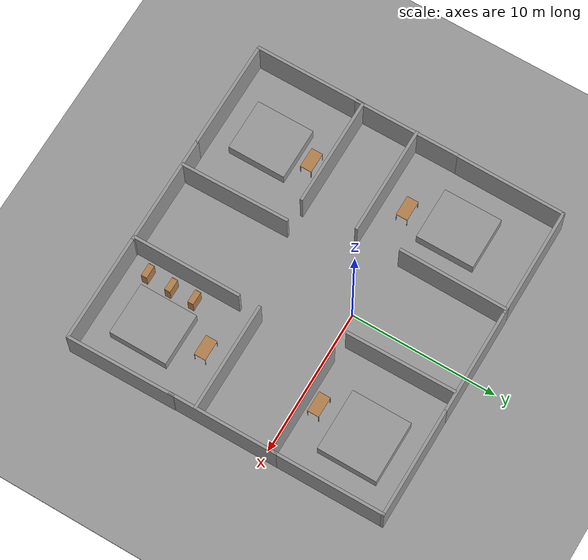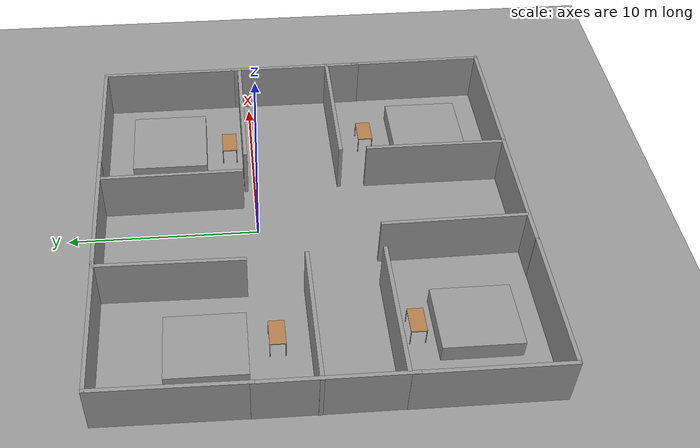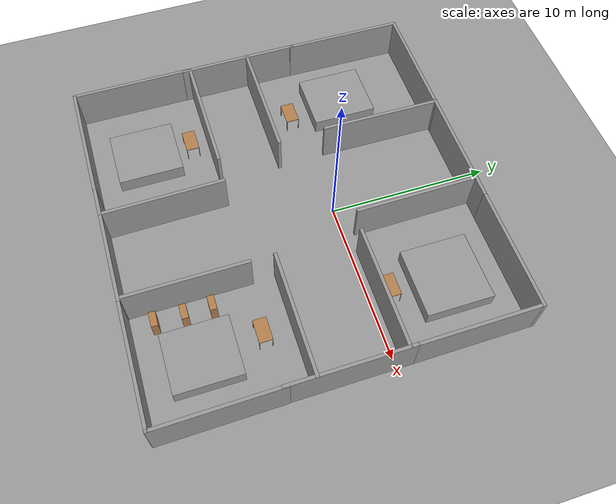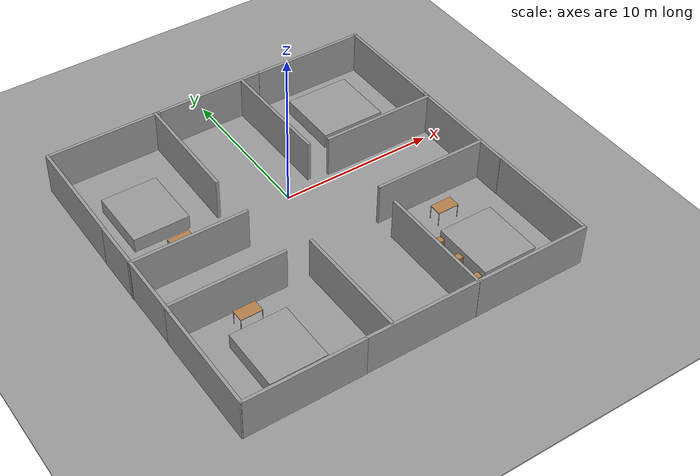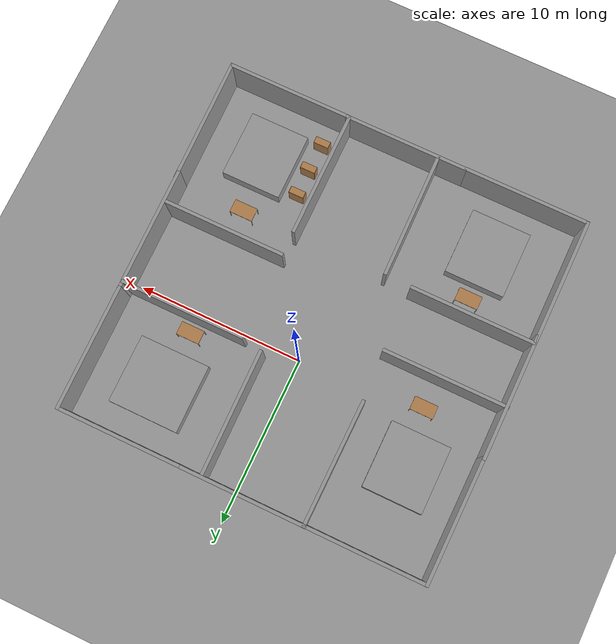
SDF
<sdf version="1.6">
 <world name="default">
  <light name="sun" type="directional">
   <pose>0 0 10 0 -0 0</pose>
   <diffuse>0.8 0.8 0.8 1</diffuse>
   <specular>0.1 0.1 0.1 1</specular>
   <attenuation>
    <range>1000</range>
    <constant>0.9</constant>
    <linear>0.01</linear>
    <quadratic>0.001</quadratic>
   </attenuation>
   <direction>-0.5 0.5 -1</direction>
  </light>
  <model name="ground_plane">
   <static>1</static>
   <link name="link">
    <collision name="collision">
     <geometry><plane><normal>0 0 1</normal><size>100 100</size></plane></geometry>
     <surface><friction><ode><mu>100</mu><mu2>50</mu2></ode></friction></surface>
    </collision>
    <visual name="visual">
     <cast_shadows>0</cast_shadows>
     <geometry><plane><normal>0 0 1</normal><size>100 100</size></plane></geometry>
     <material>
      <script><uri>file://media/materials/scripts/gazebo.material</uri><name>Gazebo/Grey</name></script>
     </material>
    </visual>
   </link>
  </model>
  <gravity>0 0 -9.8</gravity>
  <magnetic_field>6e-06 2.3e-05 -4.2e-05</magnetic_field>
  <atmosphere type="adiabatic"/>
  <physics name="default_physics" default="0" type="ode">
   <max_step_size>0.001</max_step_size>
   <real_time_factor>1</real_time_factor>
   <real_time_update_rate>1000</real_time_update_rate>
  </physics>
  <scene><ambient>0.4 0.4 0.4 1</ambient><background>0.7 0.7 0.7 1</background><shadows>1</shadows></scene>
  <spherical_coordinates>
   <surface_model>EARTH_WGS84</surface_model>
   <latitude_deg>0</latitude_deg>
   <longitude_deg>0</longitude_deg>
   <elevation>0</elevation>
   <heading_deg>0</heading_deg>
  </spherical_coordinates>
  <model name="grey_wall">
   <static>1</static>
   <link name="link">
    <pose>0 0 1.4 0 -0 0</pose>
    <collision name="collision"><geometry><box><size>7.5 0.2 2.8</size></box></geometry></collision>
    <visual name="visual">
     <cast_shadows>0</cast_shadows>
     <geometry><box><size>7.5 0.2 2.8</size></box></geometry>
     <material>
      <script>
       <uri>model://grey_wall/materials/scripts</uri>
       <uri>model://grey_wall/materials/textures</uri>
       <name>vrc/grey_wall</name>
      </script>
     </material>
    </visual>
   </link>
   <pose>-0.623864 8.19671 0 0 -0 0</pose>
  </model>
  <model name="grey_wall_0">
   <static>1</static>
   <link name="link">
    <pose>0 0 1.4 0 -0 0</pose>
    <collision name="collision"><geometry><box><size>7.5 0.2 2.8</size></box></geometry></collision>
    <visual name="visual">
     <cast_shadows>0</cast_shadows>
     <geometry><box><size>7.5 0.2 2.8</size></box></geometry>
     <material>
      <script>
       <uri>model://grey_wall/materials/scripts</uri>
       <uri>model://grey_wall/materials/textures</uri>
       <name>vrc/grey_wall</name>
      </script>
     </material>
    </visual>
   </link>
   <pose>6.825 8.19069 0 0 -0 0</pose>
  </model>
  <model name="grey_wall_1">
   <static>1</static>
   <link name="link">
    <pose>0 0 1.4 0 -0 0</pose>
    <collision name="collision"><geometry><box><size>7.5 0.2 2.8</size></box></geometry></collision>
    <visual name="visual">
     <cast_shadows>0</cast_shadows>
     <geometry><box><size>7.5 0.2 2.8</size></box></geometry>
     <material>
      <script>
       <uri>model://grey_wall/materials/scripts</uri>
       <uri>model://grey_wall/materials/textures</uri>
       <name>vrc/grey_wall</name>
      </script>
     </material>
    </visual>
   </link>
   <pose>-7.68821 8.18383 0 0 -0 0</pose>
  </model>
  <model name="grey_wall_clone">
   <static>1</static>
   <link name="link">
    <pose>0 0 1.4 0 -0 0</pose>
    <collision name="collision"><geometry><box><size>7.5 0.2 2.8</size></box></geometry></collision>
    <visual name="visual">
     <cast_shadows>0</cast_shadows>
     <geometry><box><size>7.5 0.2 2.8</size></box></geometry>
     <material>
      <script>
       <uri>model://grey_wall/materials/scripts</uri>
       <uri>model://grey_wall/materials/textures</uri>
       <name>vrc/grey_wall</name>
      </script>
     </material>
    </visual>
   </link>
   <pose>10.4889 4.5361 0 0 0 -1.56584</pose>
  </model>
  <model name="grey_wall_2">
   <static>1</static>
   <link name="link">
    <pose>0 0 1.4 0 -0 0</pose>
    <collision name="collision"><geometry><box><size>7.5 0.2 2.8</size></box></geometry></collision>
    <visual name="visual">
     <cast_shadows>0</cast_shadows>
     <geometry><box><size>7.5 0.2 2.8</size></box></geometry>
     <material>
      <script>
       <uri>model://grey_wall/materials/scripts</uri>
       <uri>model://grey_wall/materials/textures</uri>
       <name>vrc/grey_wall</name>
      </script>
     </material>
    </visual>
   </link>
   <pose>10.5283 -2.77677 0 0 0 -1.56603</pose>
  </model>
  <model name="ground_plane_0">
   <static>1</static>
   <link name="link">
    <collision name="collision">
     <geometry><plane><normal>0 0 1</normal><size>100 100</size></plane></geometry>
     <surface><friction><ode><mu>100</mu><mu2>50</mu2></ode></friction></surface>
    </collision>
    <visual name="visual">
     <cast_shadows>0</cast_shadows>
     <geometry><plane><normal>0 0 1</normal><size>100 100</size></plane></geometry>
     <material>
      <script><uri>file://media/materials/scripts/gazebo.material</uri><name>Gazebo/Grey</name></script>
     </material>
    </visual>
   </link>
   <pose>12.7265 -1.62779 0 0 -0 0</pose>
  </model>
  <model name="grey_wall_3">
   <static>1</static>
   <link name="link">
    <pose>0 0 1.4 0 -0 0</pose>
    <collision name="collision"><geometry><box><size>7.5 0.2 2.8</size></box></geometry></collision>
    <visual name="visual">
     <cast_shadows>0</cast_shadows>
     <geometry><box><size>7.5 0.2 2.8</size></box></geometry>
     <material>
      <script>
       <uri>model://grey_wall/materials/scripts</uri>
       <uri>model://grey_wall/materials/textures</uri>
       <name>vrc/grey_wall</name>
      </script>
     </material>
    </visual>
   </link>
   <pose>10.6074 -9.84817 0 0 0 -1.55935</pose>
  </model>
  <model name="grey_wall_4">
   <static>1</static>
   <link name="link">
    <pose>0 0 1.4 0 -0 0</pose>
    <collision name="collision"><geometry><box><size>7.5 0.2 2.8</size></box></geometry></collision>
    <visual name="visual">
     <cast_shadows>0</cast_shadows>
     <geometry><box><size>7.5 0.2 2.8</size></box></geometry>
     <material>
      <script>
       <uri>model://grey_wall/materials/scripts</uri>
       <uri>model://grey_wall/materials/textures</uri>
       <name>vrc/grey_wall</name>
      </script>
     </material>
    </visual>
   </link>
   <pose>6.99134 -13.5122 0 0 -0 0</pose>
  </model>
  <model name="grey_wall_5">
   <static>1</static>
   <link name="link">
    <pose>0 0 1.4 0 -0 0</pose>
    <collision name="collision"><geometry><box><size>7.5 0.2 2.8</size></box></geometry></collision>
    <visual name="visual">
     <cast_shadows>0</cast_shadows>
     <geometry><box><size>7.5 0.2 2.8</size></box></geometry>
     <material>
      <script>
       <uri>model://grey_wall/materials/scripts</uri>
       <uri>model://grey_wall/materials/textures</uri>
       <name>vrc/grey_wall</name>
      </script>
     </material>
    </visual>
   </link>
   <pose>-11.3942 4.53108 0 0 0 -1.57926</pose>
  </model>
  <model name="grey_wall_6">
   <static>1</static>
   <link name="link">
    <pose>0 0 1.4 0 -0 0</pose>
    <collision name="collision"><geometry><box><size>7.5 0.2 2.8</size></box></geometry></collision>
    <visual name="visual">
     <cast_shadows>0</cast_shadows>
     <geometry><box><size>7.5 0.2 2.8</size></box></geometry>
     <material>
      <script>
       <uri>model://grey_wall/materials/scripts</uri>
       <uri>model://grey_wall/materials/textures</uri>
       <name>vrc/grey_wall</name>
      </script>
     </material>
    </visual>
   </link>
   <pose>-11.4381 -2.75549 0 0 0 -1.57057</pose>
  </model>
  <model name="grey_wall_7">
   <static>1</static>
   <link name="link">
    <pose>0 0 1.4 0 -0 0</pose>
    <collision name="collision"><geometry><box><size>7.5 0.2 2.8</size></box></geometry></collision>
    <visual name="visual">
     <cast_shadows>0</cast_shadows>
     <geometry><box><size>7.5 0.2 2.8</size></box></geometry>
     <material>
      <script>
       <uri>model://grey_wall/materials/scripts</uri>
       <uri>model://grey_wall/materials/textures</uri>
       <name>vrc/grey_wall</name>
      </script>
     </material>
    </visual>
   </link>
   <pose>-0.33643 -13.5007 0 0 -0 0</pose>
  </model>
  <model name="grey_wall_8">
   <static>1</static>
   <link name="link">
    <pose>0 0 1.4 0 -0 0</pose>
    <collision name="collision"><geometry><box><size>7.5 0.2 2.8</size></box></geometry></collision>
    <visual name="visual">
     <cast_shadows>0</cast_shadows>
     <geometry><box><size>7.5 0.2 2.8</size></box></geometry>
     <material>
      <script>
       <uri>model://grey_wall/materials/scripts</uri>
       <uri>model://grey_wall/materials/textures</uri>
       <name>vrc/grey_wall</name>
      </script>
     </material>
    </visual>
   </link>
   <pose>-11.4536 -9.84025 0 0 0 -1.57113</pose>
  </model>
  <model name="grey_wall_9">
   <static>1</static>
   <link name="link">
    <pose>0 0 1.4 0 -0 0</pose>
    <collision name="collision"><geometry><box><size>7.5 0.2 2.8</size></box></geometry></collision>
    <visual name="visual">
     <cast_shadows>0</cast_shadows>
     <geometry><box><size>7.5 0.2 2.8</size></box></geometry>
     <material>
      <script>
       <uri>model://grey_wall/materials/scripts</uri>
       <uri>model://grey_wall/materials/textures</uri>
       <name>vrc/grey_wall</name>
      </script>
     </material>
    </visual>
   </link>
   <pose>-7.72627 -13.5148 0 0 -0 0</pose>
  </model>
  <model name="grey_wall_10">
   <static>1</static>
   <link name="link">
    <pose>0 0 1.4 0 -0 0</pose>
    <collision name="collision"><geometry><box><size>7.5 0.2 2.8</size></box></geometry></collision>
    <visual name="visual">
     <cast_shadows>0</cast_shadows>
     <geometry><box><size>7.5 0.2 2.8</size></box></geometry>
     <material>
      <script>
       <uri>model://grey_wall/materials/scripts</uri>
       <uri>model://grey_wall/materials/textures</uri>
       <name>vrc/grey_wall</name>
      </script>
     </material>
    </visual>
   </link>
   <pose>-7.74765 -6.0001 0 0 -0 0</pose>
  </model>
  <model name="grey_wall_11">
   <static>1</static>
   <link name="link">
    <pose>0 0 1.4 0 -0 0</pose>
    <collision name="collision"><geometry><box><size>7.5 0.2 2.8</size></box></geometry></collision>
    <visual name="visual">
     <cast_shadows>0</cast_shadows>
     <geometry><box><size>7.5 0.2 2.8</size></box></geometry>
     <material>
      <script>
       <uri>model://grey_wall/materials/scripts</uri>
       <uri>model://grey_wall/materials/textures</uri>
       <name>vrc/grey_wall</name>
      </script>
     </material>
    </visual>
   </link>
   <pose>-2.38469 -9.76806 0 0 0 -1.55688</pose>
  </model>
  <model name="grey_wall_12">
   <static>1</static>
   <link name="link">
    <pose>0 0 1.4 0 -0 0</pose>
    <collision name="collision"><geometry><box><size>7.5 0.2 2.8</size></box></geometry></collision>
    <visual name="visual">
     <cast_shadows>0</cast_shadows>
     <geometry><box><size>7.5 0.2 2.8</size></box></geometry>
     <material>
      <script>
       <uri>model://grey_wall/materials/scripts</uri>
       <uri>model://grey_wall/materials/textures</uri>
       <name>vrc/grey_wall</name>
      </script>
     </material>
    </visual>
   </link>
   <pose>6.85663 0.482576 0 0 -0 0</pose>
  </model>
  <model name="grey_wall_13">
   <static>1</static>
   <link name="link">
    <pose>0 0 1.4 0 -0 0</pose>
    <collision name="collision"><geometry><box><size>7.5 0.2 2.8</size></box></geometry></collision>
    <visual name="visual">
     <cast_shadows>0</cast_shadows>
     <geometry><box><size>7.5 0.2 2.8</size></box></geometry>
     <material>
      <script>
       <uri>model://grey_wall/materials/scripts</uri>
       <uri>model://grey_wall/materials/textures</uri>
       <name>vrc/grey_wall</name>
      </script>
     </material>
    </visual>
   </link>
   <pose>1.87856 4.42047 0 0 0 -1.56167</pose>
  </model>
  <model name="grey_wall_14">
   <static>1</static>
   <link name="link">
    <pose>0 0 1.4 0 -0 0</pose>
    <collision name="collision"><geometry><box><size>7.5 0.2 2.8</size></box></geometry></collision>
    <visual name="visual">
     <cast_shadows>0</cast_shadows>
     <geometry><box><size>7.5 0.2 2.8</size></box></geometry>
     <material>
      <script>
       <uri>model://grey_wall/materials/scripts</uri>
       <uri>model://grey_wall/materials/textures</uri>
       <name>vrc/grey_wall</name>
      </script>
     </material>
    </visual>
   </link>
   <pose>6.88623 -4.63329 0 0 -0 0</pose>
  </model>
  <model name="grey_wall_15">
   <static>1</static>
   <link name="link">
    <pose>0 0 1.4 0 -0 0</pose>
    <collision name="collision"><geometry><box><size>7.5 0.2 2.8</size></box></geometry></collision>
    <visual name="visual">
     <cast_shadows>0</cast_shadows>
     <geometry><box><size>7.5 0.2 2.8</size></box></geometry>
     <material>
      <script>
       <uri>model://grey_wall/materials/scripts</uri>
       <uri>model://grey_wall/materials/textures</uri>
       <name>vrc/grey_wall</name>
      </script>
     </material>
    </visual>
   </link>
   <pose>3.20432 -9.78246 0 0 0 -1.56937</pose>
  </model>
  <model name="grey_wall_16">
   <static>1</static>
   <link name="link">
    <pose>0 0 1.4 0 -0 0</pose>
    <collision name="collision"><geometry><box><size>7.5 0.2 2.8</size></box></geometry></collision>
    <visual name="visual">
     <cast_shadows>0</cast_shadows>
     <geometry><box><size>7.5 0.2 2.8</size></box></geometry>
     <material>
      <script>
       <uri>model://grey_wall/materials/scripts</uri>
       <uri>model://grey_wall/materials/textures</uri>
       <name>vrc/grey_wall</name>
      </script>
     </material>
    </visual>
   </link>
   <pose>-7.81888 -2.1599 0 0 -0 0</pose>
  </model>
  <model name="grey_wall_17">
   <static>1</static>
   <link name="link">
    <pose>0 0 1.4 0 -0 0</pose>
    <collision name="collision"><geometry><box><size>7.5 0.2 2.8</size></box></geometry></collision>
    <visual name="visual">
     <cast_shadows>0</cast_shadows>
     <geometry><box><size>7.5 0.2 2.8</size></box></geometry>
     <material>
      <script>
       <uri>model://grey_wall/materials/scripts</uri>
       <uri>model://grey_wall/materials/textures</uri>
       <name>vrc/grey_wall</name>
      </script>
     </material>
    </visual>
   </link>
   <pose>-4.25967 4.52533 0 0 0 -1.58154</pose>
  </model>
  <model name="unit_box_0_clone">
   <pose>6.91762 -9.97062 0.49925 0.000375 -0 0</pose>
   <link name="link">
    <inertial>
     <mass>1</mass>
     <inertia>
      <ixx>0.166667</ixx>
      <ixy>0</ixy>
      <ixz>0</ixz>
      <iyy>0.166667</iyy>
      <iyz>0</iyz>
      <izz>0.166667</izz>
     </inertia>
    </inertial>
    <collision name="collision"><geometry><box><size>3.59602 4.00396 1</size></box></geometry></collision>
    <visual name="visual">
     <geometry><box><size>3.59602 4.00396 1</size></box></geometry>
     <material>
      <script><name>Gazebo/Grey</name><uri>file://media/materials/scripts/gazebo.material</uri></script>
     </material>
    </visual>
   </link>
  </model>
  <model name="unit_box_0_clone_0">
   <pose>-7.15716 -10.0975 0.49925 -0.000375 0 0</pose>
   <link name="link">
    <inertial>
     <mass>1</mass>
     <inertia>
      <ixx>0.166667</ixx>
      <ixy>0</ixy>
      <ixz>0</ixz>
      <iyy>0.166667</iyy>
      <iyz>0</iyz>
      <izz>0.166667</izz>
     </inertia>
    </inertial>
    <collision name="collision"><geometry><box><size>3.59602 4.00396 1</size></box></geometry></collision>
    <visual name="visual">
     <geometry><box><size>3.59602 4.00396 1</size></box></geometry>
     <material>
      <script><name>Gazebo/Grey</name><uri>file://media/materials/scripts/gazebo.material</uri></script>
     </material>
    </visual>
   </link>
  </model>
  <model name="unit_box_0_clone_1">
   <pose>-7.95498 2.93346 0.49925 0.000375 -0 0</pose>
   <link name="link">
    <inertial>
     <mass>1</mass>
     <inertia>
      <ixx>0.166667</ixx>
      <ixy>0</ixy>
      <ixz>0</ixz>
      <iyy>0.166667</iyy>
      <iyz>0</iyz>
      <izz>0.166667</izz>
     </inertia>
    </inertial>
    <collision name="collision"><geometry><box><size>3.59602 4.00396 1</size></box></geometry></collision>
    <visual name="visual">
     <geometry><box><size>3.59602 4.00396 1</size></box></geometry>
     <material>
      <script><name>Gazebo/Grey</name><uri>file://media/materials/scripts/gazebo.material</uri></script>
     </material>
    </visual>
   </link>
  </model>
  <model name="table">
   <static>0</static>
   <link name="link">
    <collision name="surface">
     <pose>0 0 1 0 -0 0</pose>
     <geometry><box><size>1.5 0.8 0.03</size></box></geometry>
     <surface><friction><ode><mu>0.6</mu><mu2>0.6</mu2></ode></friction></surface>
    </collision>
    <visual name="visual1">
     <pose>0 0 1 0 -0 0</pose>
     <geometry><box><size>1.4 0.8 0.04</size></box></geometry>
     <material>
      <script><uri>file://media/materials/scripts/gazebo.material</uri><name>Gazebo/Wood</name></script>
     </material>
    </visual>
    <collision name="front_left_leg">
     <pose>0.68 0.38 0.5 0 -0 0</pose>
     <geometry><cylinder><radius>0.02</radius><length>1</length></cylinder></geometry>
    </collision>
    <visual name="front_left_leg">
     <pose>0.68 0.38 0.5 0 -0 0</pose>
     <geometry><cylinder><radius>0.02</radius><length>1</length></cylinder></geometry>
     <material>
      <script><uri>file://media/materials/scripts/gazebo.material</uri><name>Gazebo/Grey</name></script>
     </material>
    </visual>
    <collision name="front_right_leg">
     <pose>0.68 -0.38 0.5 0 -0 0</pose>
     <geometry><cylinder><radius>0.02</radius><length>1</length></cylinder></geometry>
    </collision>
    <visual name="front_right_leg">
     <pose>0.68 -0.38 0.5 0 -0 0</pose>
     <geometry><cylinder><radius>0.02</radius><length>1</length></cylinder></geometry>
     <material>
      <script><uri>file://media/materials/scripts/gazebo.material</uri><name>Gazebo/Grey</name></script>
     </material>
    </visual>
    <collision name="back_right_leg">
     <pose>-0.68 -0.38 0.5 0 -0 0</pose>
     <geometry><cylinder><radius>0.02</radius><length>1</length></cylinder></geometry>
    </collision>
    <visual name="back_right_leg">
     <pose>-0.68 -0.38 0.5 0 -0 0</pose>
     <geometry><cylinder><radius>0.02</radius><length>1</length></cylinder></geometry>
     <material>
      <script><uri>file://media/materials/scripts/gazebo.material</uri><name>Gazebo/Grey</name></script>
     </material>
    </visual>
    <collision name="back_left_leg">
     <pose>-0.68 0.38 0.5 0 -0 0</pose>
     <geometry><cylinder><radius>0.02</radius><length>1</length></cylinder></geometry>
    </collision>
    <visual name="back_left_leg">
     <pose>-0.68 0.38 0.5 0 -0 0</pose>
     <geometry><cylinder><radius>0.02</radius><length>1</length></cylinder></geometry>
     <material>
      <script><uri>file://media/materials/scripts/gazebo.material</uri><name>Gazebo/Grey</name></script>
     </material>
    </visual>
    <inertial>
     <inertia><ixx>1</ixx><ixy>0</ixy><ixz>0</ixz><iyy>1</iyy><iyz>0</iyz><izz>1</izz></inertia>
     <mass>1</mass>
    </inertial>
   </link>
   <pose>6.59597 -6.42808 -1e-06 0 -1e-06 0</pose>
  </model>
  <model name="table_clone">
   <static>0</static>
   <link name="link">
    <collision name="surface">
     <pose>0 0 1 0 -0 0</pose>
     <geometry><box><size>1.5 0.8 0.03</size></box></geometry>
     <surface><friction><ode><mu>0.6</mu><mu2>0.6</mu2></ode></friction></surface>
    </collision>
    <visual name="visual1">
     <pose>0 0 1 0 -0 0</pose>
     <geometry><box><size>1.4 0.8 0.04</size></box></geometry>
     <material>
      <script><uri>file://media/materials/scripts/gazebo.material</uri><name>Gazebo/Wood</name></script>
     </material>
    </visual>
    <collision name="front_left_leg">
     <pose>0.68 0.38 0.5 0 -0 0</pose>
     <geometry><cylinder><radius>0.02</radius><length>1</length></cylinder></geometry>
    </collision>
    <visual name="front_left_leg">
     <pose>0.68 0.38 0.5 0 -0 0</pose>
     <geometry><cylinder><radius>0.02</radius><length>1</length></cylinder></geometry>
     <material>
      <script><uri>file://media/materials/scripts/gazebo.material</uri><name>Gazebo/Grey</name></script>
     </material>
    </visual>
    <collision name="front_right_leg">
     <pose>0.68 -0.38 0.5 0 -0 0</pose>
     <geometry><cylinder><radius>0.02</radius><length>1</length></cylinder></geometry>
    </collision>
    <visual name="front_right_leg">
     <pose>0.68 -0.38 0.5 0 -0 0</pose>
     <geometry><cylinder><radius>0.02</radius><length>1</length></cylinder></geometry>
     <material>
      <script><uri>file://media/materials/scripts/gazebo.material</uri><name>Gazebo/Grey</name></script>
     </material>
    </visual>
    <collision name="back_right_leg">
     <pose>-0.68 -0.38 0.5 0 -0 0</pose>
     <geometry><cylinder><radius>0.02</radius><length>1</length></cylinder></geometry>
    </collision>
    <visual name="back_right_leg">
     <pose>-0.68 -0.38 0.5 0 -0 0</pose>
     <geometry><cylinder><radius>0.02</radius><length>1</length></cylinder></geometry>
     <material>
      <script><uri>file://media/materials/scripts/gazebo.material</uri><name>Gazebo/Grey</name></script>
     </material>
    </visual>
    <collision name="back_left_leg">
     <pose>-0.68 0.38 0.5 0 -0 0</pose>
     <geometry><cylinder><radius>0.02</radius><length>1</length></cylinder></geometry>
    </collision>
    <visual name="back_left_leg">
     <pose>-0.68 0.38 0.5 0 -0 0</pose>
     <geometry><cylinder><radius>0.02</radius><length>1</length></cylinder></geometry>
     <material>
      <script><uri>file://media/materials/scripts/gazebo.material</uri><name>Gazebo/Grey</name></script>
     </material>
    </visual>
    <inertial>
     <inertia><ixx>1</ixx><ixy>0</ixy><ixz>0</ixz><iyy>1</iyy><iyz>0</iyz><izz>1</izz></inertia>
     <mass>1</mass>
    </inertial>
   </link>
   <pose>6.17434 1.28263 -1e-06 1e-06 1e-06 0</pose>
  </model>
  <model name="table_clone_0">
   <static>0</static>
   <link name="link">
    <collision name="surface">
     <pose>0 0 1 0 -0 0</pose>
     <geometry><box><size>1.5 0.8 0.03</size></box></geometry>
     <surface><friction><ode><mu>0.6</mu><mu2>0.6</mu2></ode></friction></surface>
    </collision>
    <visual name="visual1">
     <pose>0 0 1 0 -0 0</pose>
     <geometry><box><size>1.4 0.8 0.04</size></box></geometry>
     <material>
      <script><uri>file://media/materials/scripts/gazebo.material</uri><name>Gazebo/Wood</name></script>
     </material>
    </visual>
    <collision name="front_left_leg">
     <pose>0.68 0.38 0.5 0 -0 0</pose>
     <geometry><cylinder><radius>0.02</radius><length>1</length></cylinder></geometry>
    </collision>
    <visual name="front_left_leg">
     <pose>0.68 0.38 0.5 0 -0 0</pose>
     <geometry><cylinder><radius>0.02</radius><length>1</length></cylinder></geometry>
     <material>
      <script><uri>file://media/materials/scripts/gazebo.material</uri><name>Gazebo/Grey</name></script>
     </material>
    </visual>
    <collision name="front_right_leg">
     <pose>0.68 -0.38 0.5 0 -0 0</pose>
     <geometry><cylinder><radius>0.02</radius><length>1</length></cylinder></geometry>
    </collision>
    <visual name="front_right_leg">
     <pose>0.68 -0.38 0.5 0 -0 0</pose>
     <geometry><cylinder><radius>0.02</radius><length>1</length></cylinder></geometry>
     <material>
      <script><uri>file://media/materials/scripts/gazebo.material</uri><name>Gazebo/Grey</name></script>
     </material>
    </visual>
    <collision name="back_right_leg">
     <pose>-0.68 -0.38 0.5 0 -0 0</pose>
     <geometry><cylinder><radius>0.02</radius><length>1</length></cylinder></geometry>
    </collision>
    <visual name="back_right_leg">
     <pose>-0.68 -0.38 0.5 0 -0 0</pose>
     <geometry><cylinder><radius>0.02</radius><length>1</length></cylinder></geometry>
     <material>
      <script><uri>file://media/materials/scripts/gazebo.material</uri><name>Gazebo/Grey</name></script>
     </material>
    </visual>
    <collision name="back_left_leg">
     <pose>-0.68 0.38 0.5 0 -0 0</pose>
     <geometry><cylinder><radius>0.02</radius><length>1</length></cylinder></geometry>
    </collision>
    <visual name="back_left_leg">
     <pose>-0.68 0.38 0.5 0 -0 0</pose>
     <geometry><cylinder><radius>0.02</radius><length>1</length></cylinder></geometry>
     <material>
      <script><uri>file://media/materials/scripts/gazebo.material</uri><name>Gazebo/Grey</name></script>
     </material>
    </visual>
    <inertial>
     <inertia><ixx>1</ixx><ixy>0</ixy><ixz>0</ixz><iyy>1</iyy><iyz>0</iyz><izz>1</izz></inertia>
     <mass>1</mass>
    </inertial>
   </link>
   <pose>-7.21528 -7.18674 -1e-06 0 -1e-06 0</pose>
  </model>
  <model name="table_clone_1">
   <static>0</static>
   <link name="link">
    <collision name="surface">
     <pose>0 0 1 0 -0 0</pose>
     <geometry><box><size>1.5 0.8 0.03</size></box></geometry>
     <surface><friction><ode><mu>0.6</mu><mu2>0.6</mu2></ode></friction></surface>
    </collision>
    <visual name="visual1">
     <pose>0 0 1 0 -0 0</pose>
     <geometry><box><size>1.4 0.8 0.04</size></box></geometry>
     <material>
      <script><uri>file://media/materials/scripts/gazebo.material</uri><name>Gazebo/Wood</name></script>
     </material>
    </visual>
    <collision name="front_left_leg">
     <pose>0.68 0.38 0.5 0 -0 0</pose>
     <geometry><cylinder><radius>0.02</radius><length>1</length></cylinder></geometry>
    </collision>
    <visual name="front_left_leg">
     <pose>0.68 0.38 0.5 0 -0 0</pose>
     <geometry><cylinder><radius>0.02</radius><length>1</length></cylinder></geometry>
     <material>
      <script><uri>file://media/materials/scripts/gazebo.material</uri><name>Gazebo/Grey</name></script>
     </material>
    </visual>
    <collision name="front_right_leg">
     <pose>0.68 -0.38 0.5 0 -0 0</pose>
     <geometry><cylinder><radius>0.02</radius><length>1</length></cylinder></geometry>
    </collision>
    <visual name="front_right_leg">
     <pose>0.68 -0.38 0.5 0 -0 0</pose>
     <geometry><cylinder><radius>0.02</radius><length>1</length></cylinder></geometry>
     <material>
      <script><uri>file://media/materials/scripts/gazebo.material</uri><name>Gazebo/Grey</name></script>
     </material>
    </visual>
    <collision name="back_right_leg">
     <pose>-0.68 -0.38 0.5 0 -0 0</pose>
     <geometry><cylinder><radius>0.02</radius><length>1</length></cylinder></geometry>
    </collision>
    <visual name="back_right_leg">
     <pose>-0.68 -0.38 0.5 0 -0 0</pose>
     <geometry><cylinder><radius>0.02</radius><length>1</length></cylinder></geometry>
     <material>
      <script><uri>file://media/materials/scripts/gazebo.material</uri><name>Gazebo/Grey</name></script>
     </material>
    </visual>
    <collision name="back_left_leg">
     <pose>-0.68 0.38 0.5 0 -0 0</pose>
     <geometry><cylinder><radius>0.02</radius><length>1</length></cylinder></geometry>
    </collision>
    <visual name="back_left_leg">
     <pose>-0.68 0.38 0.5 0 -0 0</pose>
     <geometry><cylinder><radius>0.02</radius><length>1</length></cylinder></geometry>
     <material>
      <script><uri>file://media/materials/scripts/gazebo.material</uri><name>Gazebo/Grey</name></script>
     </material>
    </visual>
    <inertial>
     <inertia><ixx>1</ixx><ixy>0</ixy><ixz>0</ixz><iyy>1</iyy><iyz>0</iyz><izz>1</izz></inertia>
     <mass>1</mass>
    </inertial>
   </link>
   <pose>-7.4694 -0.459318 -1e-06 0 -1e-06 0</pose>
  </model>
  <model name="unit_box_0_0">
   <pose>6.46809 4.61136 0.499186 -0.0004 0 0</pose>
   <link name="link">
    <inertial>
     <mass>1</mass>
     <inertia>
      <ixx>0.166667</ixx>
      <ixy>0</ixy>
      <ixz>0</ixz>
      <iyy>0.166667</iyy>
      <iyz>0</iyz>
      <izz>0.166667</izz>
     </inertia>
    </inertial>
    <collision name="collision"><geometry><box><size>4.20752 4.07283 1</size></box></geometry></collision>
    <visual name="visual">
     <geometry><box><size>4.20752 4.07283 1</size></box></geometry>
     <material>
      <script><name>Gazebo/Grey</name><uri>file://media/materials/scripts/gazebo.material</uri></script>
     </material>
    </visual>
   </link>
  </model>
  <model name="bookshelf">
   <static>1</static>
   <link name="link">
    <inertial><mass>1</mass></inertial>
    <collision name="back">
     <pose>0 0.005 0.6 0 -0 0</pose>
     <geometry><box><size>0.9 0.01 1.2</size></box></geometry>
    </collision>
    <visual name="visual1">
     <pose>0 0.005 0.6 0 -0 0</pose>
     <geometry><box><size>0.9 0.01 1.2</size></box></geometry>
     <material>
      <script><uri>file://media/materials/scripts/gazebo.material</uri><name>Gazebo/Wood</name></script>
     </material>
    </visual>
    <collision name="left_side">
     <pose>0.45 -0.195 0.6 0 -0 0</pose>
     <geometry><box><size>0.02 0.4 1.2</size></box></geometry>
    </collision>
    <visual name="visual2">
     <pose>0.45 -0.195 0.6 0 -0 0</pose>
     <geometry><box><size>0.02 0.4 1.2</size></box></geometry>
     <material>
      <script><uri>file://media/materials/scripts/gazebo.material</uri><name>Gazebo/Wood</name></script>
     </material>
    </visual>
    <collision name="right_side">
     <pose>-0.45 -0.195 0.6 0 -0 0</pose>
     <geometry><box><size>0.02 0.4 1.2</size></box></geometry>
    </collision>
    <visual name="visual3">
     <pose>-0.45 -0.195 0.6 0 -0 0</pose>
     <geometry><box><size>0.02 0.4 1.2</size></box></geometry>
     <material>
      <script><uri>file://media/materials/scripts/gazebo.material</uri><name>Gazebo/Wood</name></script>
     </material>
    </visual>
    <collision name="bottom">
     <pose>0 -0.195 0.03 0 -0 0</pose>
     <geometry><box><size>0.88 0.4 0.06</size></box></geometry>
    </collision>
    <visual name="visual4">
     <pose>0 -0.195 0.03 0 -0 0</pose>
     <geometry><box><size>0.88 0.4 0.06</size></box></geometry>
     <material>
      <script><uri>file://media/materials/scripts/gazebo.material</uri><name>Gazebo/Wood</name></script>
     </material>
    </visual>
    <collision name="top">
     <pose>0 -0.195 1.19 0 -0 0</pose>
     <geometry><box><size>0.88 0.4 0.02</size></box></geometry>
    </collision>
    <visual name="visual5">
     <pose>0 -0.195 1.19 0 -0 0</pose>
     <geometry><box><size>0.88 0.4 0.02</size></box></geometry>
     <material>
      <script><uri>file://media/materials/scripts/gazebo.material</uri><name>Gazebo/Wood</name></script>
     </material>
    </visual>
    <collision name="low_shelf">
     <pose>0 -0.195 0.43 0 -0 0</pose>
     <geometry><box><size>0.88 0.4 0.02</size></box></geometry>
    </collision>
    <visual name="visual6">
     <pose>0 -0.195 0.43 0 -0 0</pose>
     <geometry><box><size>0.88 0.4 0.02</size></box></geometry>
     <material>
      <script><uri>file://media/materials/scripts/gazebo.material</uri><name>Gazebo/Wood</name></script>
     </material>
    </visual>
    <collision name="high_shelf">
     <pose>0 -0.195 0.8 0 -0 0</pose>
     <geometry><box><size>0.88 0.4 0.02</size></box></geometry>
    </collision>
    <visual name="visual7">
     <pose>0 -0.195 0.8 0 -0 0</pose>
     <geometry><box><size>0.88 0.4 0.02</size></box></geometry>
     <material>
      <script><uri>file://media/materials/scripts/gazebo.material</uri><name>Gazebo/Wood</name></script>
     </material>
    </visual>
   </link>
   <pose>4.24144 -8.48924 0 0 -0 0</pose>
  </model>
  <model name="bookshelf_clone">
   <static>1</static>
   <link name="link">
    <inertial><mass>1</mass></inertial>
    <collision name="back">
     <pose>0 0.005 0.6 0 -0 0</pose>
     <geometry><box><size>0.9 0.01 1.2</size></box></geometry>
    </collision>
    <visual name="visual1">
     <pose>0 0.005 0.6 0 -0 0</pose>
     <geometry><box><size>0.9 0.01 1.2</size></box></geometry>
     <material>
      <script><uri>file://media/materials/scripts/gazebo.material</uri><name>Gazebo/Wood</name></script>
     </material>
    </visual>
    <collision name="left_side">
     <pose>0.45 -0.195 0.6 0 -0 0</pose>
     <geometry><box><size>0.02 0.4 1.2</size></box></geometry>
    </collision>
    <visual name="visual2">
     <pose>0.45 -0.195 0.6 0 -0 0</pose>
     <geometry><box><size>0.02 0.4 1.2</size></box></geometry>
     <material>
      <script><uri>file://media/materials/scripts/gazebo.material</uri><name>Gazebo/Wood</name></script>
     </material>
    </visual>
    <collision name="right_side">
     <pose>-0.45 -0.195 0.6 0 -0 0</pose>
     <geometry><box><size>0.02 0.4 1.2</size></box></geometry>
    </collision>
    <visual name="visual3">
     <pose>-0.45 -0.195 0.6 0 -0 0</pose>
     <geometry><box><size>0.02 0.4 1.2</size></box></geometry>
     <material>
      <script><uri>file://media/materials/scripts/gazebo.material</uri><name>Gazebo/Wood</name></script>
     </material>
    </visual>
    <collision name="bottom">
     <pose>0 -0.195 0.03 0 -0 0</pose>
     <geometry><box><size>0.88 0.4 0.06</size></box></geometry>
    </collision>
    <visual name="visual4">
     <pose>0 -0.195 0.03 0 -0 0</pose>
     <geometry><box><size>0.88 0.4 0.06</size></box></geometry>
     <material>
      <script><uri>file://media/materials/scripts/gazebo.material</uri><name>Gazebo/Wood</name></script>
     </material>
    </visual>
    <collision name="top">
     <pose>0 -0.195 1.19 0 -0 0</pose>
     <geometry><box><size>0.88 0.4 0.02</size></box></geometry>
    </collision>
    <visual name="visual5">
     <pose>0 -0.195 1.19 0 -0 0</pose>
     <geometry><box><size>0.88 0.4 0.02</size></box></geometry>
     <material>
      <script><uri>file://media/materials/scripts/gazebo.material</uri><name>Gazebo/Wood</name></script>
     </material>
    </visual>
    <collision name="low_shelf">
     <pose>0 -0.195 0.43 0 -0 0</pose>
     <geometry><box><size>0.88 0.4 0.02</size></box></geometry>
    </collision>
    <visual name="visual6">
     <pose>0 -0.195 0.43 0 -0 0</pose>
     <geometry><box><size>0.88 0.4 0.02</size></box></geometry>
     <material>
      <script><uri>file://media/materials/scripts/gazebo.material</uri><name>Gazebo/Wood</name></script>
     </material>
    </visual>
    <collision name="high_shelf">
     <pose>0 -0.195 0.8 0 -0 0</pose>
     <geometry><box><size>0.88 0.4 0.02</size></box></geometry>
    </collision>
    <visual name="visual7">
     <pose>0 -0.195 0.8 0 -0 0</pose>
     <geometry><box><size>0.88 0.4 0.02</size></box></geometry>
     <material>
      <script><uri>file://media/materials/scripts/gazebo.material</uri><name>Gazebo/Wood</name></script>
     </material>
    </visual>
   </link>
   <pose>4.2838 -10.1201 0 0 -0 0</pose>
  </model>
  <model name="bookshelf_clone_0">
   <static>1</static>
   <link name="link">
    <inertial><mass>1</mass></inertial>
    <collision name="back">
     <pose>0 0.005 0.6 0 -0 0</pose>
     <geometry><box><size>0.9 0.01 1.2</size></box></geometry>
    </collision>
    <visual name="visual1">
     <pose>0 0.005 0.6 0 -0 0</pose>
     <geometry><box><size>0.9 0.01 1.2</size></box></geometry>
     <material>
      <script><uri>file://media/materials/scripts/gazebo.material</uri><name>Gazebo/Wood</name></script>
     </material>
    </visual>
    <collision name="left_side">
     <pose>0.45 -0.195 0.6 0 -0 0</pose>
     <geometry><box><size>0.02 0.4 1.2</size></box></geometry>
    </collision>
    <visual name="visual2">
     <pose>0.45 -0.195 0.6 0 -0 0</pose>
     <geometry><box><size>0.02 0.4 1.2</size></box></geometry>
     <material>
      <script><uri>file://media/materials/scripts/gazebo.material</uri><name>Gazebo/Wood</name></script>
     </material>
    </visual>
    <collision name="right_side">
     <pose>-0.45 -0.195 0.6 0 -0 0</pose>
     <geometry><box><size>0.02 0.4 1.2</size></box></geometry>
    </collision>
    <visual name="visual3">
     <pose>-0.45 -0.195 0.6 0 -0 0</pose>
     <geometry><box><size>0.02 0.4 1.2</size></box></geometry>
     <material>
      <script><uri>file://media/materials/scripts/gazebo.material</uri><name>Gazebo/Wood</name></script>
     </material>
    </visual>
    <collision name="bottom">
     <pose>0 -0.195 0.03 0 -0 0</pose>
     <geometry><box><size>0.88 0.4 0.06</size></box></geometry>
    </collision>
    <visual name="visual4">
     <pose>0 -0.195 0.03 0 -0 0</pose>
     <geometry><box><size>0.88 0.4 0.06</size></box></geometry>
     <material>
      <script><uri>file://media/materials/scripts/gazebo.material</uri><name>Gazebo/Wood</name></script>
     </material>
    </visual>
    <collision name="top">
     <pose>0 -0.195 1.19 0 -0 0</pose>
     <geometry><box><size>0.88 0.4 0.02</size></box></geometry>
    </collision>
    <visual name="visual5">
     <pose>0 -0.195 1.19 0 -0 0</pose>
     <geometry><box><size>0.88 0.4 0.02</size></box></geometry>
     <material>
      <script><uri>file://media/materials/scripts/gazebo.material</uri><name>Gazebo/Wood</name></script>
     </material>
    </visual>
    <collision name="low_shelf">
     <pose>0 -0.195 0.43 0 -0 0</pose>
     <geometry><box><size>0.88 0.4 0.02</size></box></geometry>
    </collision>
    <visual name="visual6">
     <pose>0 -0.195 0.43 0 -0 0</pose>
     <geometry><box><size>0.88 0.4 0.02</size></box></geometry>
     <material>
      <script><uri>file://media/materials/scripts/gazebo.material</uri><name>Gazebo/Wood</name></script>
     </material>
    </visual>
    <collision name="high_shelf">
     <pose>0 -0.195 0.8 0 -0 0</pose>
     <geometry><box><size>0.88 0.4 0.02</size></box></geometry>
    </collision>
    <visual name="visual7">
     <pose>0 -0.195 0.8 0 -0 0</pose>
     <geometry><box><size>0.88 0.4 0.02</size></box></geometry>
     <material>
      <script><uri>file://media/materials/scripts/gazebo.material</uri><name>Gazebo/Wood</name></script>
     </material>
    </visual>
   </link>
   <pose>4.22799 -11.8306 0 0 -0 0</pose>
  </model>
 </world>
</sdf>
